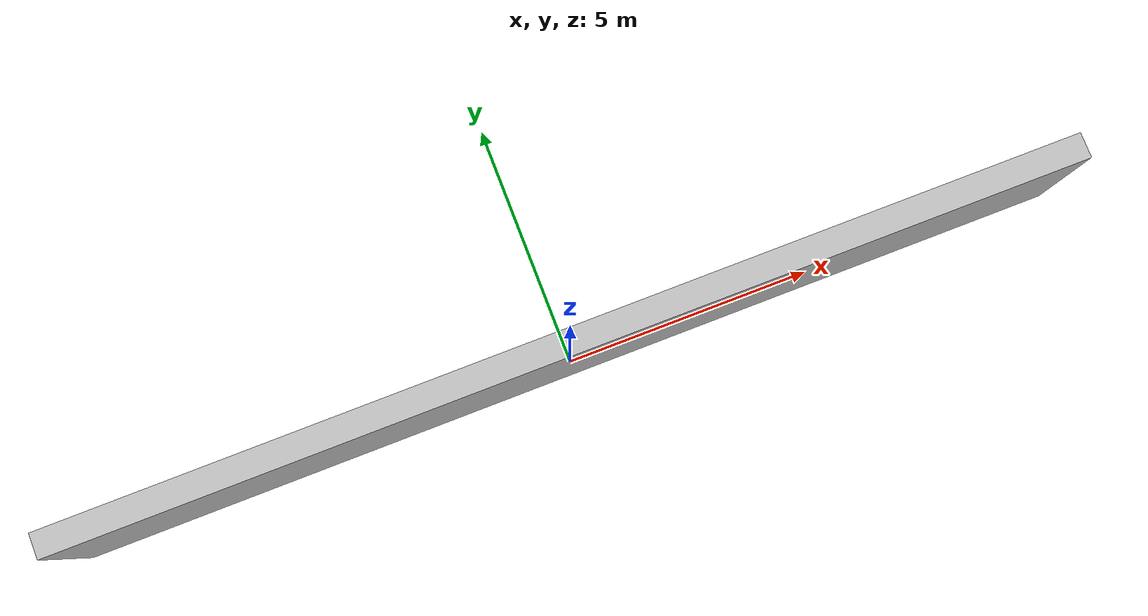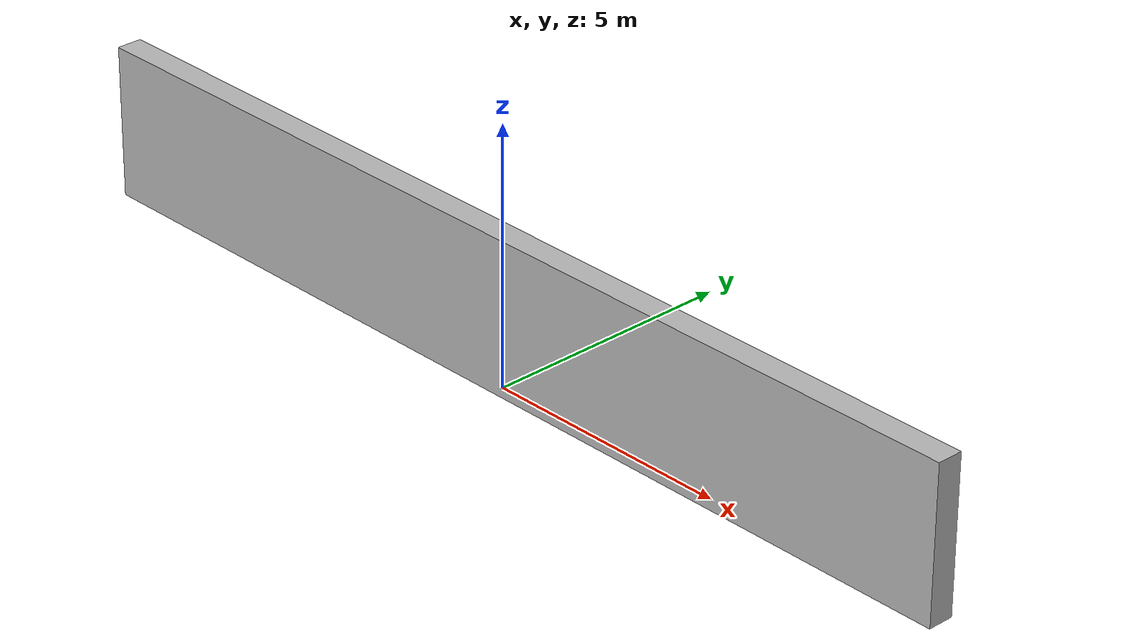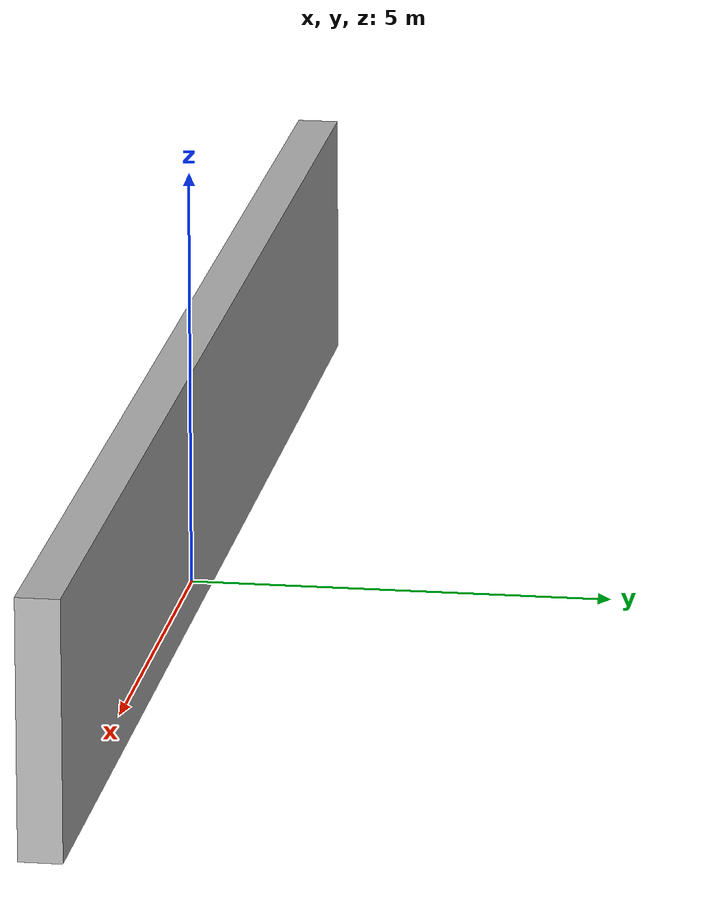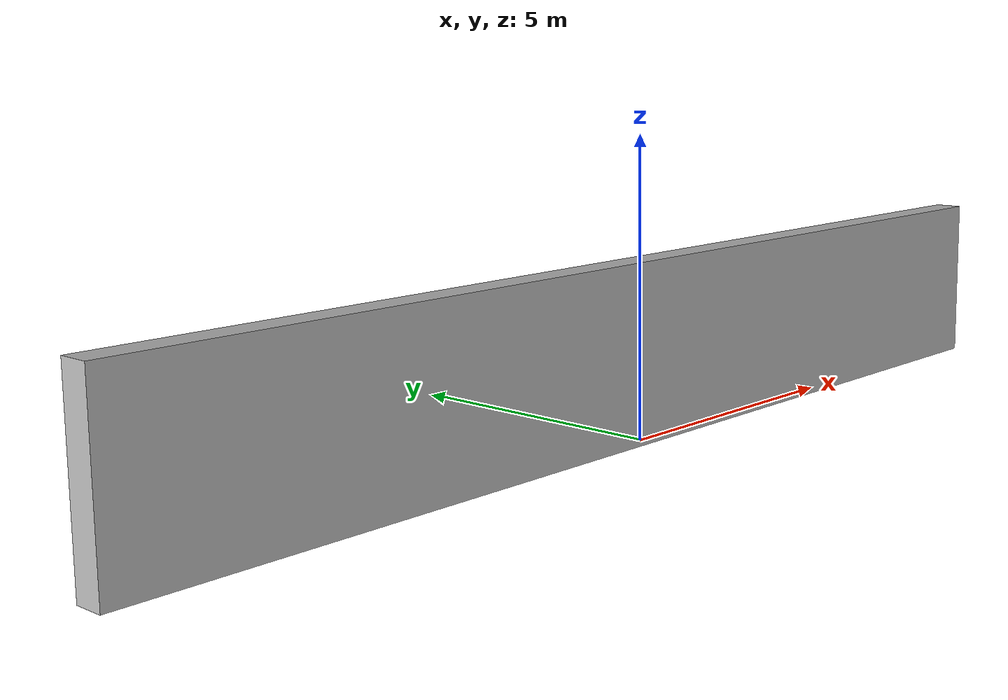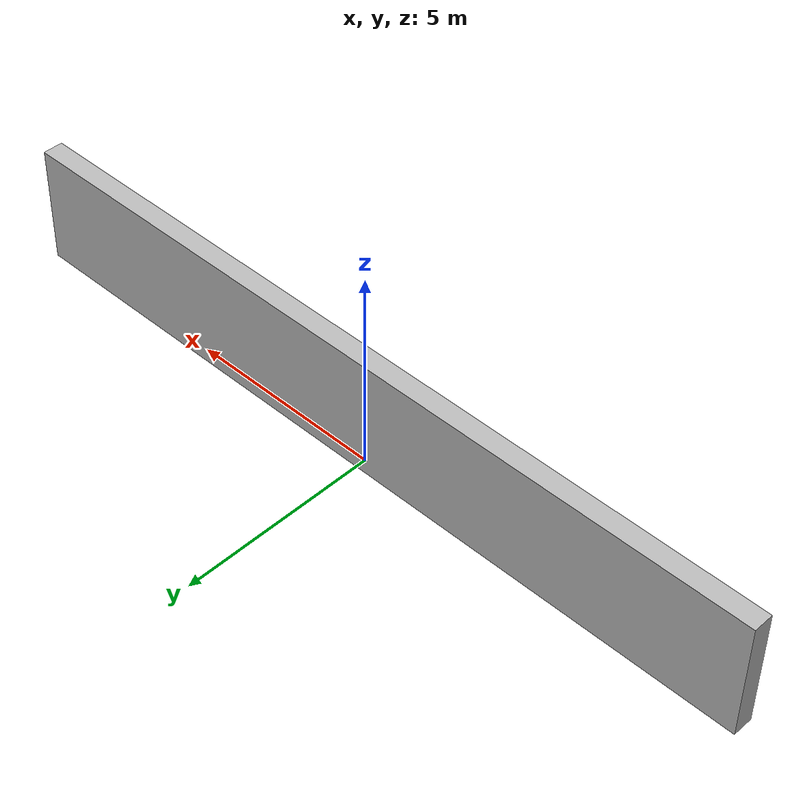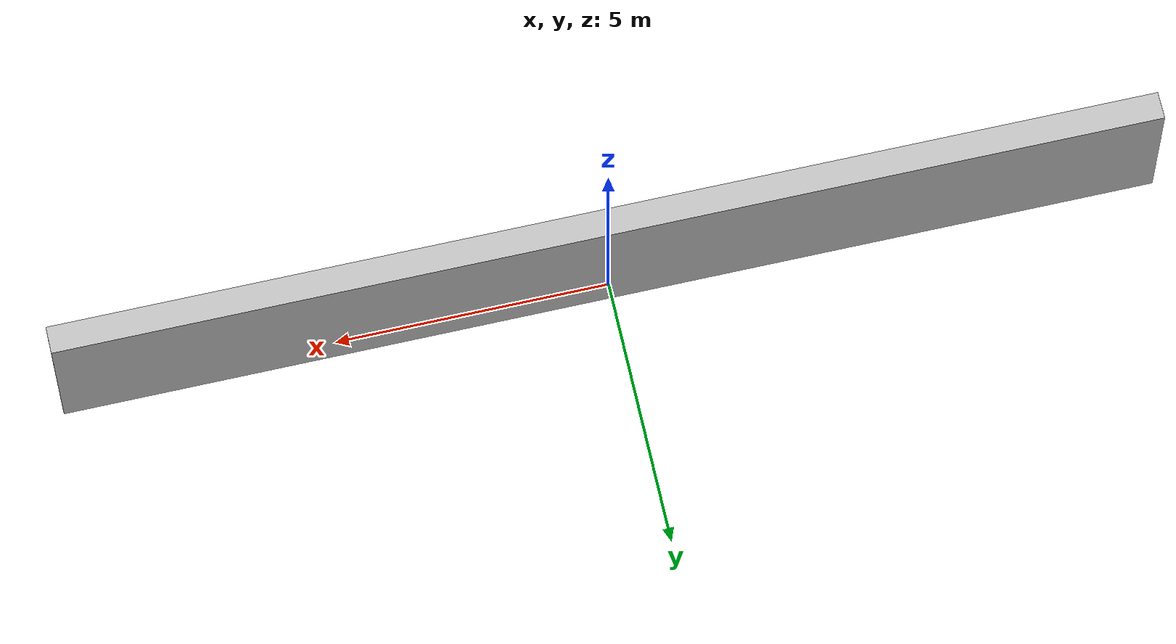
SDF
<sdf version="1.4">
<model name="brick_box_3x1x3">
    <static>1</static>
    <link name="chassis">
      <pose frame="">0 0 1.5 0 0 0</pose>
      <collision name="collision">
        <geometry>
          <box>
            <size>20 0.5 3</size>
          </box>
        </geometry>
        <max_contacts>10</max_contacts>
        <surface>
          <bounce />
          <friction>
            <ode />
          </friction>
          <contact>
            <ode />
          </contact>
        </surface>
      </collision>
      <visual name="visual">
        <geometry>
          <mesh>
            <uri>model://brick_box_3x1x3/meshes/simple_box.dae</uri>
            <scale>20 0.5 3</scale>
          </mesh>
        </geometry>
        <material>
          <script>
            <uri>model://brick_box_3x1x3/materials/scripts</uri>
            <uri>model://brick_box_3x1x3/materials/textures</uri>
            <name>BrickBox/Diffuse</name>
          </script>
        </material>
      </visual>
      <velocity_decay>
        <linear>0</linear>
        <angular>0</angular>
      </velocity_decay>
      <self_collide>0</self_collide>
      <kinematic>0</kinematic>
      <gravity>1</gravity>
    </link>
  </model>
</sdf>
